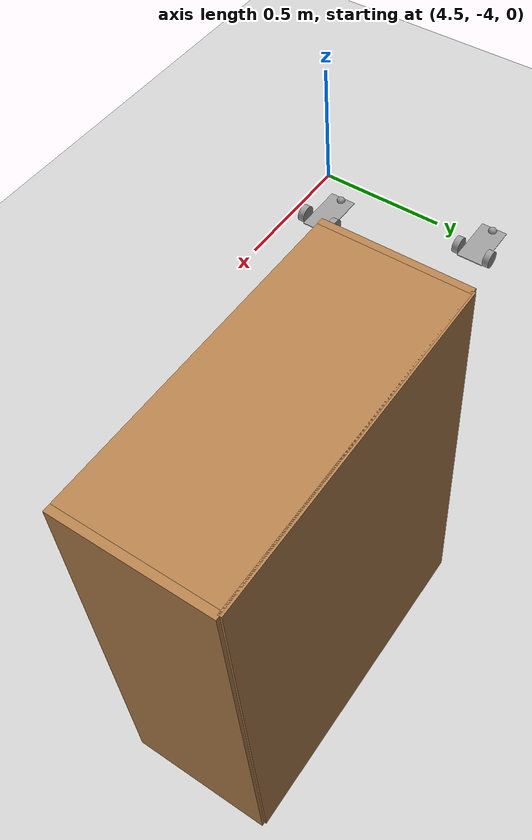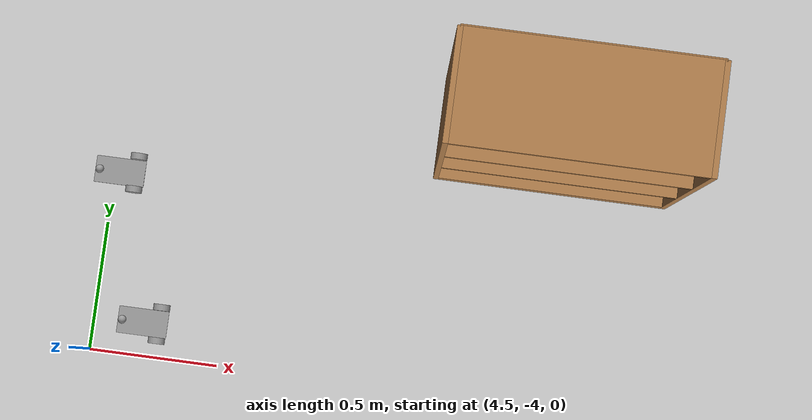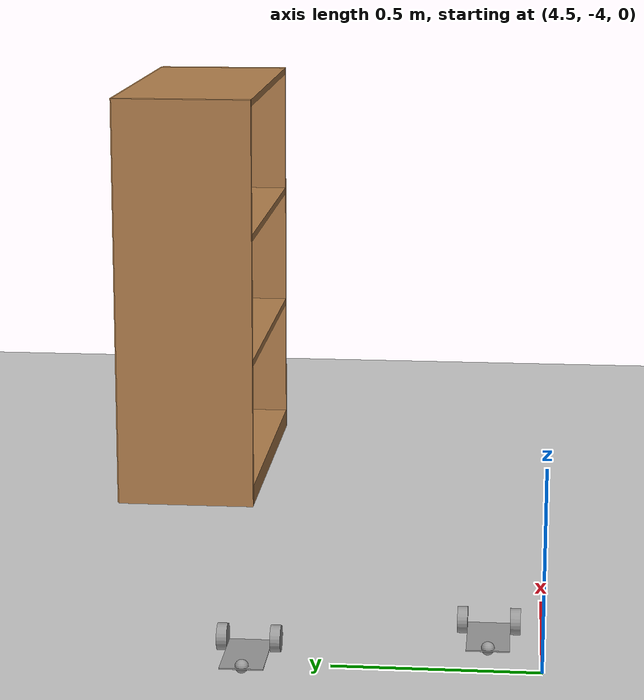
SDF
<sdf version="1.7">
 <world name="default">
  <model name="ground_plane">
   <static>1</static>
   <link name="link">
    <collision name="collision">
     <geometry><plane><normal>0 0 1</normal><size>100 100</size></plane></geometry>
     <surface>
      <contact><collide_bitmask>65535</collide_bitmask></contact>
      <friction><ode><mu>100</mu><mu2>50</mu2></ode></friction>
     </surface>
    </collision>
    <visual name="visual">
     <cast_shadows>0</cast_shadows>
     <geometry><plane><normal>0 0 1</normal><size>100 100</size></plane></geometry>
     <material>
      <script><uri>file://media/materials/scripts/gazebo.material</uri><name>Gazebo/Grey</name></script>
     </material>
    </visual>
   </link>
  </model>
  <model name="bookshelf">
   <static>1</static>
   <link name="link">
    <inertial><mass>1</mass></inertial>
    <collision name="back">
     <pose>0 0.005 0.6 0 -0 0</pose>
     <geometry><box><size>0.9 0.01 1.2</size></box></geometry>
    </collision>
    <visual name="visual1">
     <pose>0 0.005 0.6 0 -0 0</pose>
     <geometry><box><size>0.9 0.01 1.2</size></box></geometry>
     <material>
      <script><uri>file://media/materials/scripts/gazebo.material</uri><name>Gazebo/Wood</name></script>
     </material>
    </visual>
    <collision name="left_side">
     <pose>0.45 -0.195 0.6 0 -0 0</pose>
     <geometry><box><size>0.02 0.4 1.2</size></box></geometry>
    </collision>
    <visual name="visual2">
     <pose>0.45 -0.195 0.6 0 -0 0</pose>
     <geometry><box><size>0.02 0.4 1.2</size></box></geometry>
     <material>
      <script><uri>file://media/materials/scripts/gazebo.material</uri><name>Gazebo/Wood</name></script>
     </material>
    </visual>
    <collision name="right_side">
     <pose>-0.45 -0.195 0.6 0 -0 0</pose>
     <geometry><box><size>0.02 0.4 1.2</size></box></geometry>
    </collision>
    <visual name="visual3">
     <pose>-0.45 -0.195 0.6 0 -0 0</pose>
     <geometry><box><size>0.02 0.4 1.2</size></box></geometry>
     <material>
      <script><uri>file://media/materials/scripts/gazebo.material</uri><name>Gazebo/Wood</name></script>
     </material>
    </visual>
    <collision name="bottom">
     <pose>0 -0.195 0.03 0 -0 0</pose>
     <geometry><box><size>0.88 0.4 0.06</size></box></geometry>
    </collision>
    <visual name="visual4">
     <pose>0 -0.195 0.03 0 -0 0</pose>
     <geometry><box><size>0.88 0.4 0.06</size></box></geometry>
     <material>
      <script><uri>file://media/materials/scripts/gazebo.material</uri><name>Gazebo/Wood</name></script>
     </material>
    </visual>
    <collision name="top">
     <pose>0 -0.195 1.19 0 -0 0</pose>
     <geometry><box><size>0.88 0.4 0.02</size></box></geometry>
    </collision>
    <visual name="visual5">
     <pose>0 -0.195 1.19 0 -0 0</pose>
     <geometry><box><size>0.88 0.4 0.02</size></box></geometry>
     <material>
      <script><uri>file://media/materials/scripts/gazebo.material</uri><name>Gazebo/Wood</name></script>
     </material>
    </visual>
    <collision name="low_shelf">
     <pose>0 -0.195 0.43 0 -0 0</pose>
     <geometry><box><size>0.88 0.4 0.02</size></box></geometry>
    </collision>
    <visual name="visual6">
     <pose>0 -0.195 0.43 0 -0 0</pose>
     <geometry><box><size>0.88 0.4 0.02</size></box></geometry>
     <material>
      <script><uri>file://media/materials/scripts/gazebo.material</uri><name>Gazebo/Wood</name></script>
     </material>
    </visual>
    <collision name="high_shelf">
     <pose>0 -0.195 0.8 0 -0 0</pose>
     <geometry><box><size>0.88 0.4 0.02</size></box></geometry>
    </collision>
    <visual name="visual7">
     <pose>0 -0.195 0.8 0 -0 0</pose>
     <geometry><box><size>0.88 0.4 0.02</size></box></geometry>
     <material>
      <script><uri>file://media/materials/scripts/gazebo.material</uri><name>Gazebo/Wood</name></script>
     </material>
    </visual>
   </link>
   <pose>6.20454 -2.76479 0 0 -0 0</pose>
  </model>
  <model name="AptRover">
   <link name="link_1_clone">
    <inertial>
     <mass>1</mass>
     <inertia>
      <ixx>0.166667</ixx>
      <ixy>0</ixy>
      <ixz>0</ixz>
      <iyy>0.166667</iyy>
      <iyz>0</iyz>
      <izz>0.166667</izz>
     </inertia>
    </inertial>
    <pose>-0.098 0 0.014999 0 -0 0</pose>
    <visual name="visual">
     <geometry><box><size>0.196 0.105 0.003</size></box></geometry>
     <material>
      <lighting>1</lighting>
      <script><uri>file://media/materials/scripts/gazebo.material</uri><name>Gazebo/Grey</name></script>
      <shader type="pixel"><normal_map>__default__</normal_map></shader>
      <ambient>0.3 0.3 0.3 1</ambient>
      <diffuse>0.7 0.7 0.7 1</diffuse>
      <specular>0.01 0.01 0.01 1</specular>
      <emissive>0 0 0 1</emissive>
     </material>
    </visual>
    <collision name="collision">
     <geometry><box><size>0.196 0.105 0.003</size></box></geometry>
     <surface>
      <friction>
       <ode><mu>1</mu><mu2>1</mu2><fdir1>0 0 0</fdir1><slip1>0</slip1><slip2>0</slip2></ode>
       <torsional>
        <coefficient>1</coefficient>
        <patch_radius>0</patch_radius>
        <surface_radius>0</surface_radius>
        <use_patch_radius>1</use_patch_radius>
        <ode><slip>0</slip></ode>
       </torsional>
      </friction>
      <bounce><restitution_coefficient>0</restitution_coefficient><threshold>1e+06</threshold></bounce>
      <contact>
       <collide_without_contact>0</collide_without_contact>
       <collide_without_contact_bitmask>1</collide_without_contact_bitmask>
       <collide_bitmask>1</collide_bitmask>
       <ode>
        <soft_cfm>0</soft_cfm>
        <soft_erp>0.2</soft_erp>
        <kp>1e+13</kp>
        <kd>1</kd>
        <max_vel>0.01</max_vel>
        <min_depth>0</min_depth>
       </ode>
       <bullet>
        <split_impulse>1</split_impulse>
        <split_impulse_penetration_threshold>-0.01</split_impulse_penetration_threshold>
        <soft_cfm>0</soft_cfm>
        <soft_erp>0.2</soft_erp>
        <kp>1e+13</kp>
        <kd>1</kd>
       </bullet>
      </contact>
     </surface>
    </collision>
   </link>
   <link name="link_2_clone">
    <inertial>
     <mass>1</mass>
     <inertia><ixx>0.145833</ixx><ixy>0</ixy><ixz>0</ixz><iyy>0.145833</iyy><iyz>0</iyz><izz>0.125</izz></inertia>
    </inertial>
    <pose>-0.029847 0.065003 0.0329 1.5707 -0 0</pose>
    <visual name="visual">
     <geometry><cylinder><radius>0.0329</radius><length>0.025</length></cylinder></geometry>
     <material>
      <lighting>1</lighting>
      <script><uri>file://media/materials/scripts/gazebo.material</uri><name>Gazebo/Grey</name></script>
      <shader type="pixel"><normal_map>__default__</normal_map></shader>
      <ambient>0.3 0.3 0.3 1</ambient>
      <diffuse>0.7 0.7 0.7 1</diffuse>
      <specular>0.01 0.01 0.01 1</specular>
      <emissive>0 0 0 1</emissive>
     </material>
    </visual>
    <collision name="collision">
     <geometry><cylinder><radius>0.0329</radius><length>0.025</length></cylinder></geometry>
     <surface>
      <friction>
       <ode><mu>1</mu><mu2>1</mu2><fdir1>0 0 0</fdir1><slip1>0</slip1><slip2>0</slip2></ode>
       <torsional>
        <coefficient>1</coefficient>
        <patch_radius>0</patch_radius>
        <surface_radius>0</surface_radius>
        <use_patch_radius>1</use_patch_radius>
        <ode><slip>0</slip></ode>
       </torsional>
      </friction>
      <bounce><restitution_coefficient>0</restitution_coefficient><threshold>1e+06</threshold></bounce>
      <contact>
       <collide_without_contact>0</collide_without_contact>
       <collide_without_contact_bitmask>1</collide_without_contact_bitmask>
       <collide_bitmask>1</collide_bitmask>
       <ode>
        <soft_cfm>0</soft_cfm>
        <soft_erp>0.2</soft_erp>
        <kp>1e+13</kp>
        <kd>1</kd>
        <max_vel>0.01</max_vel>
        <min_depth>0</min_depth>
       </ode>
       <bullet>
        <split_impulse>1</split_impulse>
        <split_impulse_penetration_threshold>-0.01</split_impulse_penetration_threshold>
        <soft_cfm>0</soft_cfm>
        <soft_erp>0.2</soft_erp>
        <kp>1e+13</kp>
        <kd>1</kd>
       </bullet>
      </contact>
     </surface>
    </collision>
   </link>
   <link name="link_2_clone_0">
    <inertial>
     <mass>1</mass>
     <inertia><ixx>0.145833</ixx><ixy>0</ixy><ixz>0</ixz><iyy>0.145833</iyy><iyz>0</iyz><izz>0.125</izz></inertia>
    </inertial>
    <pose>-0.0329 -0.065003 0.0329 1.5707 -0 0</pose>
    <visual name="visual">
     <geometry><cylinder><radius>0.0329</radius><length>0.025</length></cylinder></geometry>
     <material>
      <lighting>1</lighting>
      <script><uri>file://media/materials/scripts/gazebo.material</uri><name>Gazebo/Grey</name></script>
      <shader type="pixel"><normal_map>__default__</normal_map></shader>
      <ambient>0.3 0.3 0.3 1</ambient>
      <diffuse>0.7 0.7 0.7 1</diffuse>
      <specular>0.01 0.01 0.01 1</specular>
      <emissive>0 0 0 1</emissive>
     </material>
    </visual>
    <collision name="collision">
     <geometry><cylinder><radius>0.0329</radius><length>0.025</length></cylinder></geometry>
     <surface>
      <friction>
       <ode><mu>1</mu><mu2>1</mu2><fdir1>0 0 0</fdir1><slip1>0</slip1><slip2>0</slip2></ode>
       <torsional>
        <coefficient>1</coefficient>
        <patch_radius>0</patch_radius>
        <surface_radius>0</surface_radius>
        <use_patch_radius>1</use_patch_radius>
        <ode><slip>0</slip></ode>
       </torsional>
      </friction>
      <bounce><restitution_coefficient>0</restitution_coefficient><threshold>1e+06</threshold></bounce>
      <contact>
       <collide_without_contact>0</collide_without_contact>
       <collide_without_contact_bitmask>1</collide_without_contact_bitmask>
       <collide_bitmask>1</collide_bitmask>
       <ode>
        <soft_cfm>0</soft_cfm>
        <soft_erp>0.2</soft_erp>
        <kp>1e+13</kp>
        <kd>1</kd>
        <max_vel>0.01</max_vel>
        <min_depth>0</min_depth>
       </ode>
       <bullet>
        <split_impulse>1</split_impulse>
        <split_impulse_penetration_threshold>-0.01</split_impulse_penetration_threshold>
        <soft_cfm>0</soft_cfm>
        <soft_erp>0.2</soft_erp>
        <kp>1e+13</kp>
        <kd>1</kd>
       </bullet>
      </contact>
     </surface>
    </collision>
   </link>
   <link name="link_3_clone">
    <inertial>
     <mass>1</mass>
     <inertia><ixx>0.1</ixx><ixy>0</ixy><ixz>0</ixz><iyy>0.1</iyy><iyz>0</iyz><izz>0.1</izz></inertia>
    </inertial>
    <pose>-0.17955 0 0.01645 0 -0 0</pose>
    <visual name="visual">
     <geometry><sphere><radius>0.01645</radius></sphere></geometry>
     <material>
      <lighting>1</lighting>
      <script><uri>file://media/materials/scripts/gazebo.material</uri><name>Gazebo/Grey</name></script>
      <shader type="pixel"><normal_map>__default__</normal_map></shader>
      <ambient>0.3 0.3 0.3 1</ambient>
      <diffuse>0.7 0.7 0.7 1</diffuse>
      <specular>0.01 0.01 0.01 1</specular>
      <emissive>0 0 0 1</emissive>
     </material>
    </visual>
    <collision name="collision">
     <geometry><sphere><radius>0.01645</radius></sphere></geometry>
     <surface>
      <friction>
       <ode><mu>1</mu><mu2>1</mu2><fdir1>0 0 0</fdir1><slip1>0</slip1><slip2>0</slip2></ode>
       <torsional>
        <coefficient>1</coefficient>
        <patch_radius>0</patch_radius>
        <surface_radius>0</surface_radius>
        <use_patch_radius>1</use_patch_radius>
        <ode><slip>0</slip></ode>
       </torsional>
      </friction>
      <bounce><restitution_coefficient>0</restitution_coefficient><threshold>1e+06</threshold></bounce>
      <contact>
       <collide_without_contact>0</collide_without_contact>
       <collide_without_contact_bitmask>1</collide_without_contact_bitmask>
       <collide_bitmask>1</collide_bitmask>
       <ode>
        <soft_cfm>0</soft_cfm>
        <soft_erp>0.2</soft_erp>
        <kp>1e+13</kp>
        <kd>1</kd>
        <max_vel>0.01</max_vel>
        <min_depth>0</min_depth>
       </ode>
       <bullet>
        <split_impulse>1</split_impulse>
        <split_impulse_penetration_threshold>-0.01</split_impulse_penetration_threshold>
        <soft_cfm>0</soft_cfm>
        <soft_erp>0.2</soft_erp>
        <kp>1e+13</kp>
        <kd>1</kd>
       </bullet>
      </contact>
     </surface>
    </collision>
   </link>
   <joint name="link_1_clone_JOINT_1" type="revolute">
    <parent>link_1_clone</parent>
    <child>link_2_clone_0</child>
    <axis>
     <xyz>-0 -0 -1</xyz>
     <limit>
      <lower>-1.79769e+308</lower>
      <upper>1.79769e+308</upper>
      <effort>-1</effort>
      <velocity>-1</velocity>
     </limit>
     <dynamics>
      <spring_reference>0</spring_reference>
      <spring_stiffness>0</spring_stiffness>
      <damping>0</damping>
     </dynamics>
    </axis>
    <physics>
     <ode><limit><cfm>0</cfm><erp>0.2</erp></limit><suspension><cfm>0</cfm><erp>0.2</erp></suspension></ode>
    </physics>
   </joint>
   <joint name="link_1_clone_JOINT_2" type="revolute">
    <parent>link_1_clone</parent>
    <child>link_2_clone</child>
    <axis>
     <xyz>0 0 1</xyz>
     <limit>
      <lower>-1.79769e+308</lower>
      <upper>1.79769e+308</upper>
      <effort>-1</effort>
      <velocity>-1</velocity>
     </limit>
     <dynamics>
      <spring_reference>0</spring_reference>
      <spring_stiffness>0</spring_stiffness>
      <damping>0</damping>
     </dynamics>
    </axis>
    <physics>
     <ode><limit><cfm>0</cfm><erp>0.2</erp></limit><suspension><cfm>0</cfm><erp>0.2</erp></suspension></ode>
    </physics>
   </joint>
   <joint name="link_1_clone_JOINT_3" type="ball">
    <parent>link_1_clone</parent>
    <child>link_3_clone</child>
    <physics>
     <ode><limit><cfm>0</cfm><erp>0.2</erp></limit><suspension><cfm>0</cfm><erp>0.2</erp></suspension></ode>
    </physics>
   </joint>
   <static>0</static>
   <pose>4.61865 -3.29449 0 0 -0 0</pose>
  </model>
  <model name="AptRover_0">
   <link name="link_1_clone">
    <inertial>
     <mass>1</mass>
     <inertia>
      <ixx>0.166667</ixx>
      <ixy>0</ixy>
      <ixz>0</ixz>
      <iyy>0.166667</iyy>
      <iyz>0</iyz>
      <izz>0.166667</izz>
     </inertia>
    </inertial>
    <pose>-0.098 0 0.014999 0 -0 0</pose>
    <visual name="visual">
     <geometry><box><size>0.196 0.105 0.003</size></box></geometry>
     <material>
      <lighting>1</lighting>
      <script><uri>file://media/materials/scripts/gazebo.material</uri><name>Gazebo/Grey</name></script>
      <shader type="pixel"><normal_map>__default__</normal_map></shader>
      <ambient>0.3 0.3 0.3 1</ambient>
      <diffuse>0.7 0.7 0.7 1</diffuse>
      <specular>0.01 0.01 0.01 1</specular>
      <emissive>0 0 0 1</emissive>
     </material>
    </visual>
    <collision name="collision">
     <geometry><box><size>0.196 0.105 0.003</size></box></geometry>
     <surface>
      <friction>
       <ode><mu>1</mu><mu2>1</mu2><fdir1>0 0 0</fdir1><slip1>0</slip1><slip2>0</slip2></ode>
       <torsional>
        <coefficient>1</coefficient>
        <patch_radius>0</patch_radius>
        <surface_radius>0</surface_radius>
        <use_patch_radius>1</use_patch_radius>
        <ode><slip>0</slip></ode>
       </torsional>
      </friction>
      <bounce><restitution_coefficient>0</restitution_coefficient><threshold>1e+06</threshold></bounce>
      <contact>
       <collide_without_contact>0</collide_without_contact>
       <collide_without_contact_bitmask>1</collide_without_contact_bitmask>
       <collide_bitmask>1</collide_bitmask>
       <ode>
        <soft_cfm>0</soft_cfm>
        <soft_erp>0.2</soft_erp>
        <kp>1e+13</kp>
        <kd>1</kd>
        <max_vel>0.01</max_vel>
        <min_depth>0</min_depth>
       </ode>
       <bullet>
        <split_impulse>1</split_impulse>
        <split_impulse_penetration_threshold>-0.01</split_impulse_penetration_threshold>
        <soft_cfm>0</soft_cfm>
        <soft_erp>0.2</soft_erp>
        <kp>1e+13</kp>
        <kd>1</kd>
       </bullet>
      </contact>
     </surface>
    </collision>
   </link>
   <link name="link_2_clone">
    <inertial>
     <mass>1</mass>
     <inertia><ixx>0.145833</ixx><ixy>0</ixy><ixz>0</ixz><iyy>0.145833</iyy><iyz>0</iyz><izz>0.125</izz></inertia>
    </inertial>
    <pose>-0.029847 0.065003 0.0329 1.5707 -0 0</pose>
    <visual name="visual">
     <geometry><cylinder><radius>0.0329</radius><length>0.025</length></cylinder></geometry>
     <material>
      <lighting>1</lighting>
      <script><uri>file://media/materials/scripts/gazebo.material</uri><name>Gazebo/Grey</name></script>
      <shader type="pixel"><normal_map>__default__</normal_map></shader>
      <ambient>0.3 0.3 0.3 1</ambient>
      <diffuse>0.7 0.7 0.7 1</diffuse>
      <specular>0.01 0.01 0.01 1</specular>
      <emissive>0 0 0 1</emissive>
     </material>
    </visual>
    <collision name="collision">
     <geometry><cylinder><radius>0.0329</radius><length>0.025</length></cylinder></geometry>
     <surface>
      <friction>
       <ode><mu>1</mu><mu2>1</mu2><fdir1>0 0 0</fdir1><slip1>0</slip1><slip2>0</slip2></ode>
       <torsional>
        <coefficient>1</coefficient>
        <patch_radius>0</patch_radius>
        <surface_radius>0</surface_radius>
        <use_patch_radius>1</use_patch_radius>
        <ode><slip>0</slip></ode>
       </torsional>
      </friction>
      <bounce><restitution_coefficient>0</restitution_coefficient><threshold>1e+06</threshold></bounce>
      <contact>
       <collide_without_contact>0</collide_without_contact>
       <collide_without_contact_bitmask>1</collide_without_contact_bitmask>
       <collide_bitmask>1</collide_bitmask>
       <ode>
        <soft_cfm>0</soft_cfm>
        <soft_erp>0.2</soft_erp>
        <kp>1e+13</kp>
        <kd>1</kd>
        <max_vel>0.01</max_vel>
        <min_depth>0</min_depth>
       </ode>
       <bullet>
        <split_impulse>1</split_impulse>
        <split_impulse_penetration_threshold>-0.01</split_impulse_penetration_threshold>
        <soft_cfm>0</soft_cfm>
        <soft_erp>0.2</soft_erp>
        <kp>1e+13</kp>
        <kd>1</kd>
       </bullet>
      </contact>
     </surface>
    </collision>
   </link>
   <link name="link_2_clone_0">
    <inertial>
     <mass>1</mass>
     <inertia><ixx>0.145833</ixx><ixy>0</ixy><ixz>0</ixz><iyy>0.145833</iyy><iyz>0</iyz><izz>0.125</izz></inertia>
    </inertial>
    <pose>-0.0329 -0.065003 0.0329 1.5707 -0 0</pose>
    <visual name="visual">
     <geometry><cylinder><radius>0.0329</radius><length>0.025</length></cylinder></geometry>
     <material>
      <lighting>1</lighting>
      <script><uri>file://media/materials/scripts/gazebo.material</uri><name>Gazebo/Grey</name></script>
      <shader type="pixel"><normal_map>__default__</normal_map></shader>
      <ambient>0.3 0.3 0.3 1</ambient>
      <diffuse>0.7 0.7 0.7 1</diffuse>
      <specular>0.01 0.01 0.01 1</specular>
      <emissive>0 0 0 1</emissive>
     </material>
    </visual>
    <collision name="collision">
     <geometry><cylinder><radius>0.0329</radius><length>0.025</length></cylinder></geometry>
     <surface>
      <friction>
       <ode><mu>1</mu><mu2>1</mu2><fdir1>0 0 0</fdir1><slip1>0</slip1><slip2>0</slip2></ode>
       <torsional>
        <coefficient>1</coefficient>
        <patch_radius>0</patch_radius>
        <surface_radius>0</surface_radius>
        <use_patch_radius>1</use_patch_radius>
        <ode><slip>0</slip></ode>
       </torsional>
      </friction>
      <bounce><restitution_coefficient>0</restitution_coefficient><threshold>1e+06</threshold></bounce>
      <contact>
       <collide_without_contact>0</collide_without_contact>
       <collide_without_contact_bitmask>1</collide_without_contact_bitmask>
       <collide_bitmask>1</collide_bitmask>
       <ode>
        <soft_cfm>0</soft_cfm>
        <soft_erp>0.2</soft_erp>
        <kp>1e+13</kp>
        <kd>1</kd>
        <max_vel>0.01</max_vel>
        <min_depth>0</min_depth>
       </ode>
       <bullet>
        <split_impulse>1</split_impulse>
        <split_impulse_penetration_threshold>-0.01</split_impulse_penetration_threshold>
        <soft_cfm>0</soft_cfm>
        <soft_erp>0.2</soft_erp>
        <kp>1e+13</kp>
        <kd>1</kd>
       </bullet>
      </contact>
     </surface>
    </collision>
   </link>
   <link name="link_3_clone">
    <inertial>
     <mass>1</mass>
     <inertia><ixx>0.1</ixx><ixy>0</ixy><ixz>0</ixz><iyy>0.1</iyy><iyz>0</iyz><izz>0.1</izz></inertia>
    </inertial>
    <pose>-0.17955 0 0.01645 0 -0 0</pose>
    <visual name="visual">
     <geometry><sphere><radius>0.01645</radius></sphere></geometry>
     <material>
      <lighting>1</lighting>
      <script><uri>file://media/materials/scripts/gazebo.material</uri><name>Gazebo/Grey</name></script>
      <shader type="pixel"><normal_map>__default__</normal_map></shader>
      <ambient>0.3 0.3 0.3 1</ambient>
      <diffuse>0.7 0.7 0.7 1</diffuse>
      <specular>0.01 0.01 0.01 1</specular>
      <emissive>0 0 0 1</emissive>
     </material>
    </visual>
    <collision name="collision">
     <geometry><sphere><radius>0.01645</radius></sphere></geometry>
     <surface>
      <friction>
       <ode><mu>1</mu><mu2>1</mu2><fdir1>0 0 0</fdir1><slip1>0</slip1><slip2>0</slip2></ode>
       <torsional>
        <coefficient>1</coefficient>
        <patch_radius>0</patch_radius>
        <surface_radius>0</surface_radius>
        <use_patch_radius>1</use_patch_radius>
        <ode><slip>0</slip></ode>
       </torsional>
      </friction>
      <bounce><restitution_coefficient>0</restitution_coefficient><threshold>1e+06</threshold></bounce>
      <contact>
       <collide_without_contact>0</collide_without_contact>
       <collide_without_contact_bitmask>1</collide_without_contact_bitmask>
       <collide_bitmask>1</collide_bitmask>
       <ode>
        <soft_cfm>0</soft_cfm>
        <soft_erp>0.2</soft_erp>
        <kp>1e+13</kp>
        <kd>1</kd>
        <max_vel>0.01</max_vel>
        <min_depth>0</min_depth>
       </ode>
       <bullet>
        <split_impulse>1</split_impulse>
        <split_impulse_penetration_threshold>-0.01</split_impulse_penetration_threshold>
        <soft_cfm>0</soft_cfm>
        <soft_erp>0.2</soft_erp>
        <kp>1e+13</kp>
        <kd>1</kd>
       </bullet>
      </contact>
     </surface>
    </collision>
   </link>
   <joint name="link_1_clone_JOINT_1" type="revolute">
    <parent>link_1_clone</parent>
    <child>link_2_clone_0</child>
    <axis>
     <xyz>-0 -0 -1</xyz>
     <limit>
      <lower>-1.79769e+308</lower>
      <upper>1.79769e+308</upper>
      <effort>-1</effort>
      <velocity>-1</velocity>
     </limit>
     <dynamics>
      <spring_reference>0</spring_reference>
      <spring_stiffness>0</spring_stiffness>
      <damping>0</damping>
     </dynamics>
    </axis>
    <physics>
     <ode><limit><cfm>0</cfm><erp>0.2</erp></limit><suspension><cfm>0</cfm><erp>0.2</erp></suspension></ode>
    </physics>
   </joint>
   <joint name="link_1_clone_JOINT_2" type="revolute">
    <parent>link_1_clone</parent>
    <child>link_2_clone</child>
    <axis>
     <xyz>0 0 1</xyz>
     <limit>
      <lower>-1.79769e+308</lower>
      <upper>1.79769e+308</upper>
      <effort>-1</effort>
      <velocity>-1</velocity>
     </limit>
     <dynamics>
      <spring_reference>0</spring_reference>
      <spring_stiffness>0</spring_stiffness>
      <damping>0</damping>
     </dynamics>
    </axis>
    <physics>
     <ode><limit><cfm>0</cfm><erp>0.2</erp></limit><suspension><cfm>0</cfm><erp>0.2</erp></suspension></ode>
    </physics>
   </joint>
   <joint name="link_1_clone_JOINT_3" type="ball">
    <parent>link_1_clone</parent>
    <child>link_3_clone</child>
    <physics>
     <ode><limit><cfm>0</cfm><erp>0.2</erp></limit><suspension><cfm>0</cfm><erp>0.2</erp></suspension></ode>
    </physics>
   </joint>
   <static>0</static>
   <pose>4.79007 -3.86915 0 0 -0 0</pose>
  </model>
 </world>
</sdf>
